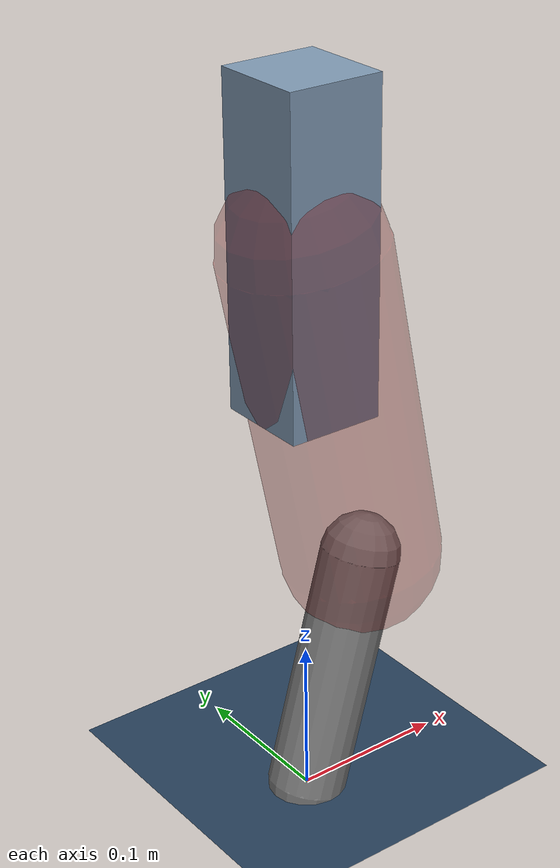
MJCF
<mujoco model="Hopper2D">
	<compiler inertiafromgeom="true" angle="radian" />
	<option timestep="0.001" integrator="implicit" cone="elliptic" solver="Newton" tolerance="1e-10" />

	<default>
		<geom contype="1" conaffinity="1" condim="3" friction="2 0.005 0.0001" solref="0.005 1" />
		<joint limited="true" damping="0.1" />
	</default>

	<asset>
		<texture name="skybox" type="skybox" builtin="gradient" rgb1=".4 .6 .8" rgb2="0 0 0" width="800" height="800" />
		<texture name="grid" type="2d" builtin="checker" rgb1=".1 .2 .3" rgb2=".2 .3 .4" width="300" height="300" mark="edge" markrgb=".2 .3 .4" />
		<material name="ground" texture="grid" texrepeat="1 1" texuniform="true" reflectance="0.1" />
		<material name="leg" rgba="0.5 0.6 0.7 1" />
	</asset>

	<worldbody>

		<geom name="floor" type="plane" size="5 5 0.25" material="ground" />

		<light directional="false" diffuse="0.8 0.8 0.8" specular="0.3 0.3 0.3" pos="0 0 2" dir="0 0 -1" />
		<light mode="targetbodycom" target="base" directional="false" diffuse="0.8 0.8 0.8" specular="0.3 0.3 0.3" pos="0 0 2" dir="0 0 -1" />

		<camera name="fixed" pos="0 -2 1" xyaxes="1 0 0 0 0 1" />
		<camera name="tracking" mode="trackcom" pos="0 -3 1" />

		<body name="root" pos="0 0 0.3622792789108543">
			<joint name="slide_x" type="slide" axis="1 0 0" range="-100 100" />
			<joint name="slide_z" type="slide" axis="0 0 1" range="0 10" />

			<body name="base" pos="0 0 0">
				<geom name="torso" type="box" size="0.03 0.03 0.1" mass="2.875" material="leg" />

				<body name="link1" pos="0 0 0" euler="0 1.3692143248072992 0">
					<joint type="hinge" axis="0 -1 0" pos="0 0 0" name="hinge1" limited="true" range="-3.14 3.14" stiffness="0" damping="0.1" />
					<geom name="thigh" type="capsule" fromto="0 0 0 0.21186207537638924 0 0" size="0.05" rgba="0.5 0 0 0.3" mass="0.7592413959786121" />

					<body name="link2" pos="0.21186207537638924 0 0" euler="0 0.46919359732840515 0">
						<joint type="hinge" axis="0 -1 0" pos="0 0 0" name="hinge2" limited="true" range="-3.14 3.14" stiffness="0" damping="0.1" />
						<geom name="shank" type="capsule" fromto="0 0 0 0.16041720353446506 0 0" size="0.025" mass="0.36693376282757206" />

					</body>
				</body>
			</body>
		</body>
	</worldbody>

	<actuator>
		<motor name="torque1" joint="hinge1" ctrlrange="-81.97958058463168 81.97958058463168" ctrllimited="true" gear="1" />
		<motor name="torque2" joint="hinge2" ctrlrange="-24.06959248352267 24.06959248352267" ctrllimited="true" gear="1" />
	</actuator>
</mujoco>
